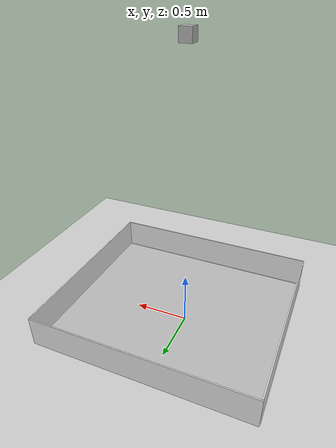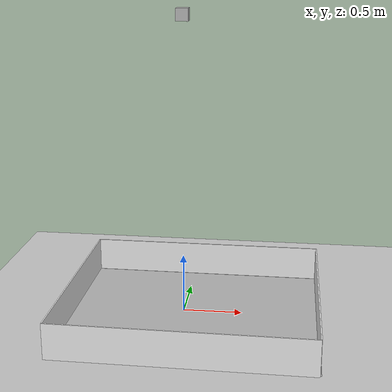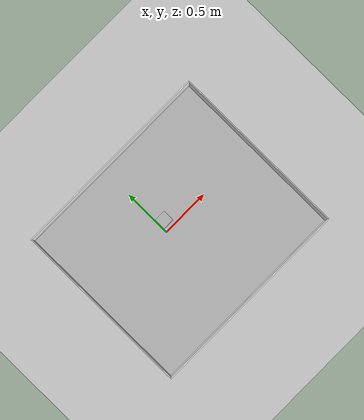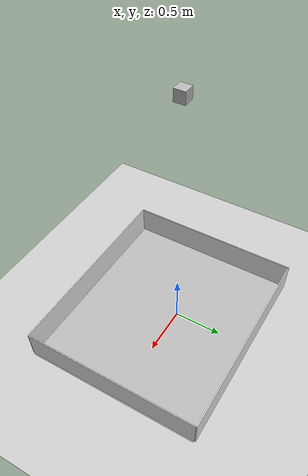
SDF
<sdf version="1.9">
 <world name="simulation_world">
  <physics name="1ms" type="ignored">
   <max_step_size>0.001</max_step_size>
   <real_time_factor>1</real_time_factor>
   <real_time_update_rate>1000</real_time_update_rate>
  </physics>
  <plugin name="ignition::gazebo::systems::Physics" filename="ignition-gazebo-physics-system"/>
  <plugin name="ignition::gazebo::systems::Sensors" filename="ignition-gazebo-sensors-system">
   <render_engine>ogre</render_engine>
  </plugin>
  <plugin name="ignition::gazebo::systems::UserCommands" filename="ignition-gazebo-user-commands-system"/>
  <plugin name="ignition::gazebo::systems::SceneBroadcaster" filename="ignition-gazebo-scene-broadcaster-system"/>
  <scene>
   <ambient>1 1 1 1</ambient>
   <background>0.8 0.8 0.8 1</background>
   <grid>true</grid>
   <shadows>true</shadows>
  </scene>
  <gravity>0 0 -9.8</gravity>
  <magnetic_field>6e-06 2.3e-05 -4.2e-05</magnetic_field>
  <atmosphere type="adiabatic"/>
  <model name="ground_plane">
   <static>1</static>
   <link name="link">
    <collision name="collision">
     <geometry><plane><normal>0 0 1</normal><size>100 100</size></plane></geometry>
     <surface><friction><ode><mu>100</mu><mu2>50</mu2></ode></friction></surface>
    </collision>
    <visual name="visual">
     <cast_shadows>0</cast_shadows>
     <geometry><plane><normal>0 0 1</normal><size>100 100</size></plane></geometry>
     <material>
      <script><uri>file://media/materials/scripts/gazebo.material</uri><name>Gazebo/Grey</name></script>
     </material>
    </visual>
   </link>
  </model>
  <include>
   <uri>model://ring_road_v2</uri>
   <name>ring_road_v2</name>
   <pose>0.101656 -0.078452 0.001 0 0 1.57</pose>
  </include>
  <include>
   <uri>model://working_wall</uri>
   <name>working_wall</name>
   <pose>0.0968763 0.832985 0.15 0 0 0</pose>
  </include>
  <include>
   <uri>model://working_wall</uri>
   <name>working_wall_0</name>
   <pose>0.0984354 -0.993087 0.15 0 0 0</pose>
  </include>
  <include>
   <uri>model://working_wall_2</uri>
   <name>working_wall_1</name>
   <pose>-0.936563 -0.0819793 0.15 0 0 1.5708</pose>
  </include>
  <include>
   <uri>model://working_wall_2</uri>
   <name>working_wall_2</name>
   <pose>1.13688 -0.0811864 0.15 0 0 1.5708</pose>
  </include>
  <include><pose>0 0 2.5 0 1.57 0</pose><uri>model://overlord_camera</uri></include>
  <audio><device>default</device></audio>
  <light name="user_point_light_0" type="point">
   <pose>0 0 1.0 0 0 0</pose>
   <diffuse>0.2 0.2 0.2 1</diffuse>
   <specular>0.1 0.1 0.1 1</specular>
   <attenuation>
    <range>10</range>
    <constant>0.5</constant>
    <linear>0.01</linear>
    <quadratic>0.001</quadratic>
   </attenuation>
   <cast_shadows>0</cast_shadows>
   <direction>0 0 -1</direction>
  </light>
  <light name="user_point_light_1" type="point">
   <pose>0 -1.0 1.0 0 0 0</pose>
   <diffuse>0.2 0.2 0.2 1</diffuse>
   <specular>0.1 0.1 0.1 1</specular>
   <attenuation>
    <range>10</range>
    <constant>0.5</constant>
    <linear>0.01</linear>
    <quadratic>0.001</quadratic>
   </attenuation>
   <cast_shadows>0</cast_shadows>
   <direction>0 0 -1</direction>
  </light>
  <light name="user_point_light_2" type="point">
   <pose>0 1.0 1.0 0 0 0</pose>
   <diffuse>0.2 0.2 0.2 1</diffuse>
   <specular>0.1 0.1 0.1 1</specular>
   <attenuation>
    <range>10</range>
    <constant>0.5</constant>
    <linear>0.01</linear>
    <quadratic>0.001</quadratic>
   </attenuation>
   <cast_shadows>0</cast_shadows>
   <direction>0 0 -1</direction>
  </light>
  <light name="sun" type="directional">
   <pose>0 0 10 0 -0 0</pose>
   <intensity>1</intensity>
   <direction>-0.5 0.1 -0.9</direction>
   <diffuse>0.8 0.8 0.8 1</diffuse>
   <specular>0.8 0.8 0.8 1</specular>
   <attenuation>
    <range>1000</range>
    <linear>0.01</linear>
    <constant>0.90000000000000002</constant>
    <quadratic>0.001</quadratic>
   </attenuation>
   <spot><inner_angle>0</inner_angle><outer_angle>0</outer_angle><falloff>0</falloff></spot>
  </light>
 </world>
</sdf>

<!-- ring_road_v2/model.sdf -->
<sdf version="1.5">
    <model name='ring_road_v2'>
      <static>1</static>
      <link name='link'>
        <visual name='visual'>
          <cast_shadows>0</cast_shadows>
          <geometry>
            <mesh>
            <uri>model://ring_road_v2/meshes/ring_v2.dae</uri>
          </mesh>
          </geometry>
        </visual>
        <self_collide>0</self_collide>
        <kinematic>0</kinematic>
        <gravity>1</gravity>
      </link>
      <pose>0 0 0 0 -0 0</pose>
    </model>
</sdf>

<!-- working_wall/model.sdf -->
<sdf version='1.6'>
  <model name='working_wall'>
    <link name='link'>
      <self_collide>0</self_collide>
      <kinematic>0</kinematic>
      <gravity>1</gravity>
      <enable_wind>0</enable_wind>
      <pose frame=''>0 0 0 0 -0 0</pose>
      <inertial>
        <mass>1</mass>
        <pose frame=''>0 0 0 0 -0 0</pose>
        <inertia>
          <ixx>1</ixx>
          <ixy>0</ixy>
          <ixz>0</ixz>
          <iyy>1</iyy>
          <iyz>0</iyz>
          <izz>1</izz>
        </inertia>
      </inertial>
      <visual name='visual'>
        <cast_shadows>0</cast_shadows>
        <geometry>
          <box>
            <size>2.08 0.01 0.3</size>
          </box>
        </geometry>
        <material>
          <script>
            <uri>file://media/materials/scripts/gazebo.material</uri>
            <name>Gazebo/White</name>
          </script>
          <shader type='vertex'>
            <normal_map>__default__</normal_map>
          </shader>
          <ambient>1 1 1 1</ambient>
          <diffuse>1 1 1 1</diffuse>
          <specular>0 0 0 1</specular>
          <emissive>0 0 0 1</emissive>
        </material>
        <pose frame=''>0 0 0 0 -0 0</pose>
        <transparency>0</transparency>
      </visual>
      <collision name='collision'>
        <laser_retro>0</laser_retro>
        <max_contacts>10</max_contacts>
        <pose frame=''>0 0 0 0 -0 0</pose>
        <geometry>
          <box>
            <size>2.08 0.01 0.3</size>
          </box>
        </geometry>
        <surface>
          <friction>
            <ode>
              <mu>1</mu>
              <mu2>1</mu2>
              <fdir1>0 0 0</fdir1>
              <slip1>0</slip1>
              <slip2>0</slip2>
            </ode>
            <torsional>
              <coefficient>1</coefficient>
              <patch_radius>0</patch_radius>
              <surface_radius>0</surface_radius>
              <use_patch_radius>1</use_patch_radius>
              <ode>
                <slip>0</slip>
              </ode>
            </torsional>
          </friction>
          <bounce>
            <restitution_coefficient>0</restitution_coefficient>
            <threshold>1e+06</threshold>
          </bounce>
          <contact>
            <collide_without_contact>0</collide_without_contact>
            <collide_without_contact_bitmask>1</collide_without_contact_bitmask>
            <collide_bitmask>1</collide_bitmask>
            <ode>
              <soft_cfm>0</soft_cfm>
              <soft_erp>0.2</soft_erp>
              <kp>1e+13</kp>
              <kd>1</kd>
              <max_vel>0.01</max_vel>
              <min_depth>0</min_depth>
            </ode>
            <bullet>
              <split_impulse>1</split_impulse>
              <split_impulse_penetration_threshold>-0.01</split_impulse_penetration_threshold>
              <soft_cfm>0</soft_cfm>
              <soft_erp>0.2</soft_erp>
              <kp>1e+13</kp>
              <kd>1</kd>
            </bullet>
          </contact>
        </surface>
      </collision>
    </link>
    <static>1</static>
    <allow_auto_disable>1</allow_auto_disable>
  </model>
</sdf>

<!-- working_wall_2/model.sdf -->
<sdf version='1.6'>
  <model name='working_wall_2'>
    <link name='link'>
      <self_collide>0</self_collide>
      <kinematic>0</kinematic>
      <gravity>1</gravity>
      <enable_wind>0</enable_wind>
      <pose frame=''>0 0 0 0 -0 0</pose>
      <inertial>
        <mass>1</mass>
        <pose frame=''>0 0 0 0 -0 0</pose>
        <inertia>
          <ixx>1</ixx>
          <ixy>0</ixy>
          <ixz>0</ixz>
          <iyy>1</iyy>
          <iyz>0</iyz>
          <izz>1</izz>
        </inertia>
      </inertial>
      <visual name='visual'>
        <cast_shadows>0</cast_shadows>
        <geometry>
          <box>
            <size>1.81 0.01 0.3</size>
          </box>
        </geometry>
        <material>
          <script>
            <uri>file://media/materials/scripts/gazebo.material</uri>
            <name>Gazebo/White</name>
          </script>
          <shader type='vertex'>
            <normal_map>__default__</normal_map>
          </shader>
          <ambient>1 1 1 1</ambient>
          <diffuse>1 1 1 1</diffuse>
          <specular>0 0 0 1</specular>
          <emissive>0 0 0 1</emissive>
        </material>
        <pose frame=''>0 0 0 0 -0 0</pose>
        <transparency>0</transparency>
      </visual>
      <collision name='collision'>
        <laser_retro>0</laser_retro>
        <max_contacts>10</max_contacts>
        <pose frame=''>0 0 0 0 -0 0</pose>
        <geometry>
          <box>
            <size>1.81 0.01 0.3</size>
          </box>
        </geometry>
        <surface>
          <friction>
            <ode>
              <mu>1</mu>
              <mu2>1</mu2>
              <fdir1>0 0 0</fdir1>
              <slip1>0</slip1>
              <slip2>0</slip2>
            </ode>
            <torsional>
              <coefficient>1</coefficient>
              <patch_radius>0</patch_radius>
              <surface_radius>0</surface_radius>
              <use_patch_radius>1</use_patch_radius>
              <ode>
                <slip>0</slip>
              </ode>
            </torsional>
          </friction>
          <bounce>
            <restitution_coefficient>0</restitution_coefficient>
            <threshold>1e+06</threshold>
          </bounce>
          <contact>
            <collide_without_contact>0</collide_without_contact>
            <collide_without_contact_bitmask>1</collide_without_contact_bitmask>
            <collide_bitmask>1</collide_bitmask>
            <ode>
              <soft_cfm>0</soft_cfm>
              <soft_erp>0.2</soft_erp>
              <kp>1e+13</kp>
              <kd>1</kd>
              <max_vel>0.01</max_vel>
              <min_depth>0</min_depth>
            </ode>
            <bullet>
              <split_impulse>1</split_impulse>
              <split_impulse_penetration_threshold>-0.01</split_impulse_penetration_threshold>
              <soft_cfm>0</soft_cfm>
              <soft_erp>0.2</soft_erp>
              <kp>1e+13</kp>
              <kd>1</kd>
            </bullet>
          </contact>
        </surface>
      </collision>
    </link>
    <static>1</static>
    <allow_auto_disable>1</allow_auto_disable>
  </model>
</sdf>

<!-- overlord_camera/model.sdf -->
<sdf version='1.6'>
  <model name='overlord_camera'>
    <static>true</static>
    <pose>0 0 0 0 0 0</pose>
    <link name='link'>

      <!-- Visual -->
      <visual name='visual'>
        <geometry>
          <box>
            <size>0.1 0.1 0.1</size>
          </box>
        </geometry>
      </visual>

      <!-- Collision -->
      <collision name='collision'>
        <geometry>
          <box>
            <size>0.1 0.1 0.1</size>
          </box>
        </geometry>
        <surface>
          <contact>
            <collide_without_contact>false</collide_without_contact>
            <collide_bitmask>0xFF</collide_bitmask>
          </contact>
        </surface>
      </collision>

      <!-- Inertial -->
      <inertial>
        <mass>0.1</mass>
        <inertia>
          <ixx>0.000083</ixx>
          <iyy>0.000083</iyy>
          <izz>0.000083</izz>
          <ixy>0.0</ixy>
          <ixz>0.0</ixz>
          <iyz>0.0</iyz>
        </inertia>
      </inertial>

      <!-- Camera Sensor -->
    <sensor name="camera" type="camera">
      <pose>0 0 0 0 0 0</pose>
        <camera>
            <horizontal_fov>1.047</horizontal_fov>
                <image>
                  <width>720</width>
                  <height>480</height>
                </image>
                <clip>
                  <near>0.1</near>
                  <far>100</far>
                </clip>
        </camera>
       <always_on>1</always_on>
       <update_rate>30</update_rate>
       <visualize>true</visualize>
       <topic>/overhead_camera</topic>
    </sensor>

    </link>
  </model>
</sdf>
